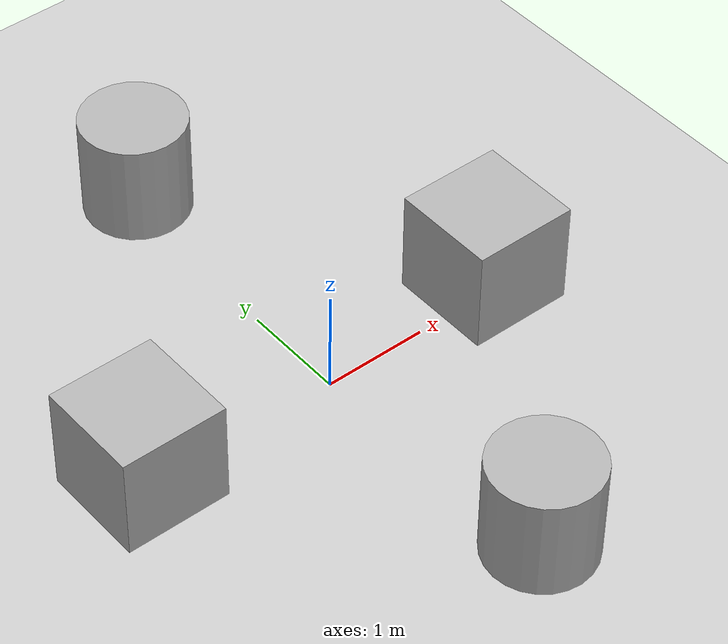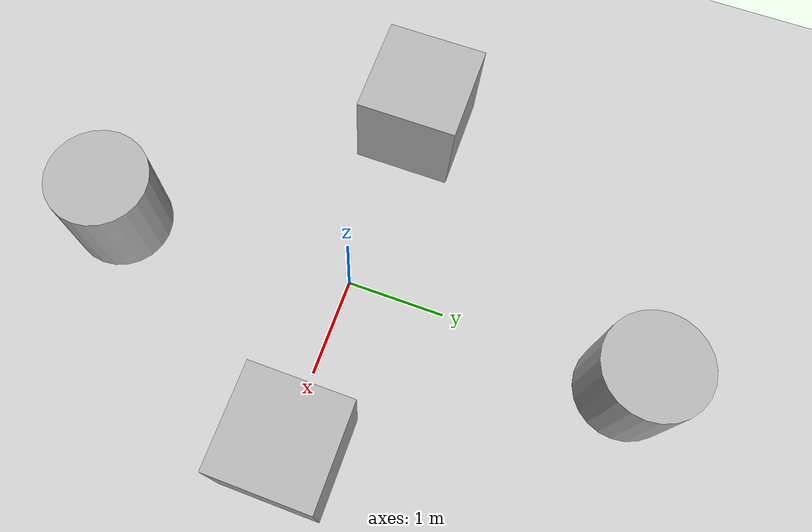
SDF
<sdf version='1.9'>
    <world name='world_demo'>
      <physics name='1ms' type='ignored'>
        <max_step_size>0.001</max_step_size>
        <real_time_factor>1</real_time_factor>
        <real_time_update_rate>1000</real_time_update_rate>
      </physics>
      <plugin name='gz::sim::systems::Physics' filename='ignition-gazebo-physics-system'/>
      <plugin name='gz::sim::systems::UserCommands' filename='ignition-gazebo-user-commands-system'/>
      <plugin name='gz::sim::systems::SceneBroadcaster' filename='ignition-gazebo-scene-broadcaster-system'/>
      <plugin name='gz::sim::systems::Sensors' filename='libignition-gazebo-sensors-system.so'>
        <render_engine>ogre2</render_engine>
      </plugin>
      <gravity>0 0 -9.8</gravity>
      <gui fullscreen='false'>
        <plugin name='3D View' filename='MinimalScene'>
          <ignition-gui>
            <title>3D View</title>
            <property type='bool' key='showTitleBar'>false</property>
            <property type='string' key='state'>docked</property>
          </ignition-gui>
          <engine>ogre2</engine>
          <scene>scene</scene>
          <ambient_light>0.4 0.4 0.4</ambient_light>
          <background_color>0.8 0.8 0.8</background_color>
          <camera_pose>-6 0 6 0 0.5 0</camera_pose>
        </plugin>
        <plugin name='Entity context menu' filename='EntityContextMenuPlugin'>
          <ignition-gui>
            <property key='state' type='string'>floating</property>
            <property key='width' type='double'>5</property>
            <property key='height' type='double'>5</property>
            <property key='showTitleBar' type='bool'>false</property>
          </ignition-gui>
        </plugin>
        <plugin name='Scene Manager' filename='GzSceneManager'>
          <ignition-gui>
            <property key='resizable' type='bool'>false</property>
            <property key='width' type='double'>5</property>
            <property key='height' type='double'>5</property>
            <property key='state' type='string'>floating</property>
            <property key='showTitleBar' type='bool'>false</property>
          </ignition-gui>
        </plugin>

        <plugin name='Interactive view control' filename='InteractiveViewControl'>
          <ignition-gui>
            <property key='resizable' type='bool'>false</property>
            <property key='width' type='double'>5</property>
            <property key='height' type='double'>5</property>
            <property key='state' type='string'>floating</property>
            <property key='showTitleBar' type='bool'>false</property>
          </ignition-gui>
        </plugin>
        <plugin name='Camera Tracking' filename='CameraTracking'>
          <ignition-gui>
            <property key='resizable' type='bool'>false</property>
            <property key='width' type='double'>5</property>
            <property key='height' type='double'>5</property>
            <property key='state' type='string'>floating</property>
            <property key='showTitleBar' type='bool'>false</property>
          </ignition-gui>
        </plugin>
        <plugin name='Image Display' filename='ImageDisplay'>
          <ignition-gui>
            <title>RGB camera</title>
            <property key='state' type='string'>floating</property>
            <property type='double' key='width'>640</property>
            <property type='double' key='height'>480</property>
          </ignition-gui>
          <topic>/camera/image_raw</topic>
          <topic_picker>false</topic_picker>
        </plugin>
        <plugin name='World control' filename='WorldControl'>
          <ignition-gui>
            <title>World control</title>
            <property type='bool' key='showTitleBar'>false</property>
            <property type='bool' key='resizable'>false</property>
            <property type='double' key='height'>72</property>
            <property type='double' key='width'>121</property>
            <property type='double' key='z'>1</property>
            <property type='string' key='state'>floating</property>
            <anchors target='3D View'>
              <line own='left' target='left'/>
              <line own='bottom' target='bottom'/>
            </anchors>
          </ignition-gui>
          <play_pause>true</play_pause>
          <step>true</step>
          <start_paused>true</start_paused>
          <use_event>true</use_event>
        </plugin>
        <plugin name='World stats' filename='WorldStats'>
          <ignition-gui>
            <title>World stats</title>
            <property type='bool' key='showTitleBar'>false</property>
            <property type='bool' key='resizable'>false</property>
            <property type='double' key='height'>110</property>
            <property type='double' key='width'>290</property>
            <property type='double' key='z'>1</property>
            <property type='string' key='state'>floating</property>
            <anchors target='3D View'>
              <line own='right' target='right'/>
              <line own='bottom' target='bottom'/>
            </anchors>
          </ignition-gui>
          <sim_time>true</sim_time>
          <real_time>true</real_time>
          <real_time_factor>true</real_time_factor>
          <iterations>true</iterations>
        </plugin>
        <plugin name='Component inspector' filename='ComponentInspector'>
          <ignition-gui>
            <property type='string' key='state'>docked</property>
          </ignition-gui>
        </plugin>
        <plugin name='Entity tree' filename='EntityTree'>
          <ignition-gui>
            <property type='string' key='state'>docked</property>
          </ignition-gui>
        </plugin>
      </gui>
      <magnetic_field>6e-06 2.3e-05 -4.2e-05</magnetic_field>
      <atmosphere type='adiabatic'/>
      <scene>
        <ambient>0.4 0.4 0.4 1</ambient>
        <background>0.7 0.7 0.7 1</background>
        <shadows>true</shadows>
      </scene>
      <model name='ground_plane'>
        <static>true</static>
        <link name='link'>
          <collision name='collision'>
            <geometry>
              <plane>
                <normal>0 0 1</normal>
                <size>100 100</size>
              </plane>
            </geometry>
            <surface>
              <friction>
                <ode/>
              </friction>
              <bounce/>
              <contact/>
            </surface>
          </collision>
          <visual name='visual'>
            <geometry>
              <plane>
                <normal>0 0 1</normal>
                <size>100 100</size>
              </plane>
            </geometry>
            <material>
              <ambient>0.8 0.8 0.8 1</ambient>
              <diffuse>0.8 0.8 0.8 1</diffuse>
              <specular>0.8 0.8 0.8 1</specular>
            </material>
          </visual>
          <pose>0 0 0 0 -0 0</pose>
          <inertial>
            <pose>0 0 0 0 -0 0</pose>
            <mass>1</mass>
            <inertia>
              <ixx>1</ixx>
              <ixy>0</ixy>
              <ixz>0</ixz>
              <iyy>1</iyy>
              <iyz>0</iyz>
              <izz>1</izz>
            </inertia>
          </inertial>
          <enable_wind>false</enable_wind>
        </link>
        <pose>0 0 0 0 -0 0</pose>
        <self_collide>false</self_collide>
      </model>
      <model name='box'>
        <pose>1.77143 0.06208 0.5 0 0 -0</pose>
        <link name='box_link'>
          <inertial>
            <inertia>
              <ixx>0.16666</ixx>
              <ixy>0</ixy>
              <ixz>0</ixz>
              <iyy>0.16666</iyy>
              <iyz>0</iyz>
              <izz>0.16666</izz>
            </inertia>
            <mass>1</mass>
            <pose>0 0 0 0 -0 0</pose>
          </inertial>
          <collision name='box_collision'>
            <geometry>
              <box>
                <size>1 1 1</size>
              </box>
            </geometry>
            <surface>
              <friction>
                <ode/>
              </friction>
              <bounce/>
              <contact/>
            </surface>
          </collision>
          <visual name='box_visual'>
            <geometry>
              <box>
                <size>1 1 1</size>
              </box>
            </geometry>
            <material>
              <ambient>0.3 0.3 0.3 1</ambient>
              <diffuse>0.7 0.7 0.7 1</diffuse>
              <specular>1 1 1 1</specular>
            </material>
          </visual>
          <pose>0 0 0 0 -0 0</pose>
          <enable_wind>false</enable_wind>
        </link>
        <static>false</static>
        <self_collide>false</self_collide>
      </model>
      <model name='cylinder'>
        <pose>0.160348 -2.44973 0.499999 0 0 0</pose>
        <link name='cylinder_link'>
          <inertial>
            <inertia>
              <ixx>0.14580000000000001</ixx>
              <ixy>0</ixy>
              <ixz>0</ixz>
              <iyy>0.14580000000000001</iyy>
              <iyz>0</iyz>
              <izz>0.125</izz>
            </inertia>
            <mass>1</mass>
            <pose>0 0 0 0 -0 0</pose>
          </inertial>
          <collision name='cylinder_collision'>
            <geometry>
              <cylinder>
                <radius>0.5</radius>
                <length>1</length>
              </cylinder>
            </geometry>
            <surface>
              <friction>
                <ode/>
              </friction>
              <bounce/>
              <contact/>
            </surface>
          </collision>
          <visual name='cylinder_visual'>
            <geometry>
              <cylinder>
                <radius>0.5</radius>
                <length>1</length>
              </cylinder>
            </geometry>
            <material>
              <ambient>0.3 0.3 0.3 1</ambient>
              <diffuse>0.7 0.7 0.7 1</diffuse>
              <specular>1 1 1 1</specular>
            </material>
          </visual>
          <pose>0 0 0 0 -0 0</pose>
          <enable_wind>false</enable_wind>
        </link>
        <static>false</static>
        <self_collide>false</self_collide>
      </model>
      <model name='cylinder_0'>
        <pose>0.102845 2.87752 0.499999 0 0 -0</pose>
        <link name='cylinder_link'>
          <inertial>
            <inertia>
              <ixx>0.14580000000000001</ixx>
              <ixy>0</ixy>
              <ixz>0</ixz>
              <iyy>0.14580000000000001</iyy>
              <iyz>0</iyz>
              <izz>0.125</izz>
            </inertia>
            <mass>1</mass>
            <pose>0 0 0 0 -0 0</pose>
          </inertial>
          <collision name='cylinder_collision'>
            <geometry>
              <cylinder>
                <radius>0.5</radius>
                <length>1</length>
              </cylinder>
            </geometry>
            <surface>
              <friction>
                <ode/>
              </friction>
              <bounce/>
              <contact/>
            </surface>
          </collision>
          <visual name='cylinder_visual'>
            <geometry>
              <cylinder>
                <radius>0.5</radius>
                <length>1</length>
              </cylinder>
            </geometry>
            <material>
              <ambient>0.3 0.3 0.3 1</ambient>
              <diffuse>0.7 0.7 0.7 1</diffuse>
              <specular>1 1 1 1</specular>
            </material>
          </visual>
          <pose>0 0 0 0 -0 0</pose>
          <enable_wind>false</enable_wind>
        </link>
        <static>false</static>
        <self_collide>false</self_collide>
      </model>
      <model name='box_0'>
        <pose>-1.91766 0.057894 0.5 0 0 -0</pose>
        <link name='box_link'>
          <inertial>
            <inertia>
              <ixx>0.16666</ixx>
              <ixy>0</ixy>
              <ixz>0</ixz>
              <iyy>0.16666</iyy>
              <iyz>0</iyz>
              <izz>0.16666</izz>
            </inertia>
            <mass>1</mass>
            <pose>0 0 0 0 -0 0</pose>
          </inertial>
          <collision name='box_collision'>
            <geometry>
              <box>
                <size>1 1 1</size>
              </box>
            </geometry>
            <surface>
              <friction>
                <ode/>
              </friction>
              <bounce/>
              <contact/>
            </surface>
          </collision>
          <visual name='box_visual'>
            <geometry>
              <box>
                <size>1 1 1</size>
              </box>
            </geometry>
            <material>
              <ambient>0.3 0.3 0.3 1</ambient>
              <diffuse>0.7 0.7 0.7 1</diffuse>
              <specular>1 1 1 1</specular>
            </material>
          </visual>
          <pose>0 0 0 0 -0 0</pose>
          <enable_wind>false</enable_wind>
        </link>
        <static>false</static>
        <self_collide>false</self_collide>
      </model>
      <light name='sun' type='directional'>
        <pose>0 0 10 0 -0 0</pose>
        <cast_shadows>true</cast_shadows>
        <intensity>1</intensity>
        <direction>-0.5 0.1 -0.9</direction>
        <diffuse>0.8 0.8 0.8 1</diffuse>
        <specular>0.2 0.2 0.2 1</specular>
        <attenuation>
          <range>1000</range>
          <linear>0.01</linear>
          <constant>0.90000000000000002</constant>
          <quadratic>0.001</quadratic>
        </attenuation>
        <spot>
          <inner_angle>0</inner_angle>
          <outer_angle>0</outer_angle>
          <falloff>0</falloff>
        </spot>
      </light>

    </world>
  </sdf>
